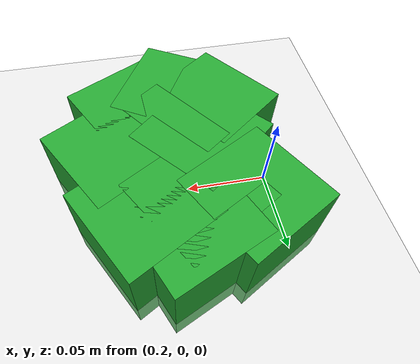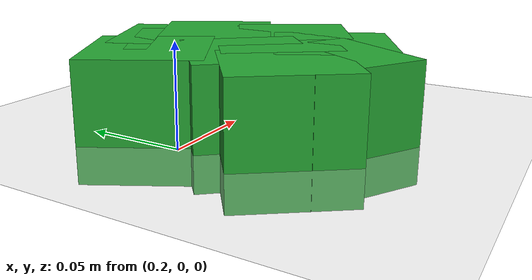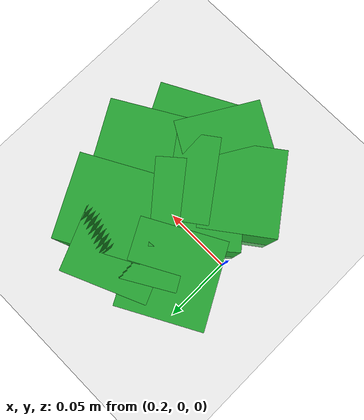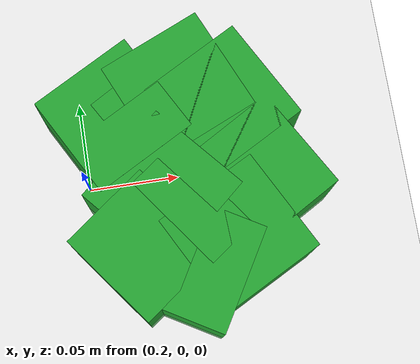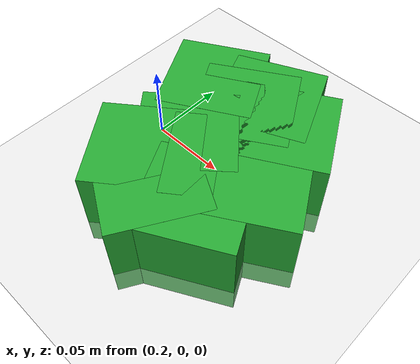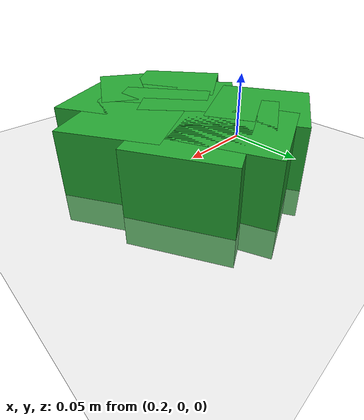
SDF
<sdf version='1.7'>
    <world name='default'>
        <scene>
            <ambient>0.0 0.0 0.0 1.0</ambient>
            <shadows>0</shadows>
            <background>0.7 0.7 0.7 1</background>
        </scene>
        <!-- A global light source -->
        <include>
            <uri>model://sun</uri>
        </include>

        <!-- A ground plane -->
        <include>
            <uri>model://ground_plane</uri>
        </include>

        <!--CUBES-->

        <model name='cube_red'>
            <include>
                <uri>model://cube_red</uri>
            </include>
            <pose frame=''>0.251 0.00503 0.011 0.000183 0.0 0.750</pose>
        </model>

        <model name='cube_green'>
            <include>
                <uri>model://cube_green</uri>
            </include>
            <pose frame=''>0.2566 0.041363 0.011 0 0 0.41164</pose>
        </model>

        <model name='cube_green1'>
            <include>
                <uri>model://cube_green</uri>
            </include>
            <pose frame=''>0.279 0.0296 0.011 0.0 0.0 0.5</pose>
        </model>

        <model name='cube_green2'>
            <include>
                <uri>model://cube_green</uri>
            </include>
            <pose frame=''>0.25 0.0272 0.011 0.0 0.0 0.5326</pose>
        </model>
        <model name='cube_green3'>
            <include>
                <uri>model://cube_green</uri>
            </include>
            <pose frame=''>0.2199 0.031 0.011 -0.00036 0.0 0.5</pose>
        </model>
        <model name='cube_green4'>
            <include>
                <uri>model://cube_green</uri>
            </include>
            <pose frame=''>0.24 -0.013 0.011 0.0 -0.000184 0.7153</pose>
        </model>
        <model name='cube_green5'>
            <include>
                <uri>model://cube_green</uri>
            </include>
            <pose frame=''>0.26666 -0.014079 0.011 0.0 0.000183 0.634</pose>
        </model>
        <model name='cube_green6'>
            <include>
                <uri>model://cube_green</uri>
            </include>
            <pose frame=''>0.291355 -0.011962 0.011 0.0 0.0 0.527</pose>
        </model>
        <model name='cube_green7'>
            <include>
                <uri>model://cube_green</uri>
            </include>
            <pose frame=''>0.2288 -0.039197 0.011 0.0 0.0 0.641550</pose>
        </model>
        <model name='cube_green8'>
            <include>
                <uri>model://cube_green</uri>
            </include>
            <pose frame=''>0.25 -0.052115 0.011 0.0 -0.000184 -0.5307</pose>
        </model>
        <model name='cube_green9'>
            <include>
                <uri>model://cube_green</uri>
            </include>
            <pose frame=''>0.2761 -0.042210 0.011 0.0 0.0 0.485</pose>
        </model>

        <physics name='default_physics' default='0' type='ode'>
            <max_step_size>0.001</max_step_size>
            <real_time_factor>1</real_time_factor>
            <real_time_update_rate>1000</real_time_update_rate>
        </physics>
        <!--GUI-->
        <gui fullscreen='0'>
            <camera name='user_camera'>
                <pose frame=''>0.198 -0.823 0.916 0 0.763 1.592</pose>
                <view_controller>orbit</view_controller>
                <projection_type>perspective</projection_type>
            </camera>
        </gui>
        <!-- SplotLight source -->
    <light name='user_spot_light_0' type='spot'>
      <pose>0.24066 -0.017779 1 0 -0 0</pose>
      <diffuse>0.5 0.5 0.5 1</diffuse>
      <specular>0.1 0.1 0.1 1</specular>
      <direction>0 0 -1</direction>
      <attenuation>
        <range>20</range>
        <constant>0.5</constant>
        <linear>0.01</linear>
        <quadratic>0.001</quadratic>
      </attenuation>
      <cast_shadows>0</cast_shadows>
      <spot>
        <inner_angle>0.6</inner_angle>
        <outer_angle>1</outer_angle>
        <falloff>1</falloff>
      </spot>
    </light>

    </world>
</sdf>

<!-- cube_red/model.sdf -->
<sdf version="1.8">
  <model name="cube_red">
    <static>false</static>
    <link name="cube_link">

      <inertial>
        <mass>0.1</mass>
        <inertia>
          <ixx>0.000042</ixx>
          <iyy>0.000042</iyy>
          <izz>0.000042</izz>
        </inertia>
      </inertial>

      <collision name="collision">
        <geometry>
          <box><size>0.05 0.05 0.05</size></box>
        </geometry>
        <surface>
          <friction>
            <ode><mu>0.8</mu><mu2>0.8</mu2></ode>
          </friction>
        </surface>
      </collision>

      <visual name="visual">
        <geometry>
          <box><size>0.05 0.05 0.05</size></box>
        </geometry>
        <material>
          <ambient>1 0 0 1</ambient>
          <diffuse>1 0 0 1</diffuse>
          <specular>0.1 0.1 0.1 1</specular>
        </material>
      </visual>

    </link>
  </model>
</sdf>

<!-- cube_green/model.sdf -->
<sdf version='1.6'>
  <model name="cube_green">
      <static>0</static>
      <link name='link'>
        <inertial>
          <mass>0.25</mass>
          <inertia>
            <ixx>0.001</ixx>
            <ixy>0.000000</ixy>
            <ixz>0.000000</ixz>
            <iyy>0.001</iyy>
            <iyz>0.000000</iyz>
            <izz>0.001</izz>
          </inertia>
        </inertial>
        <collision name='collision'>
          <geometry>
            <box>
              <size>0.060 0.060 0.060</size>
            </box>
          </geometry>
          <surface>
            <friction>
              <ode>
                <mu>30.0</mu>
                <mu2>30.0</mu2>
              </ode>
            </friction>
            <contact>
              <ode>
                <kp>1000000.0</kp>
                <kd>100.0</kd>
                <max_vel>1.0</max_vel>
                <min_depth>0.002</min_depth>
              </ode>
            </contact>
          </surface>
        </collision>
        <visual name='visual'>
          <geometry>
            <box>
              <size>0.060 0.060 0.060</size>
            </box>
          </geometry>
          <material>
            <script>
              <uri>file://media/materials/scripts/gazebo.material</uri>
              <name>Gazebo/Green</name>
            </script>
          </material>
        </visual>
        <velocity_decay>
          <linear>0.000000</linear>
          <angular>0.000000</angular>
        </velocity_decay>
        <self_collide>0</self_collide>
        <kinematic>0</kinematic>
        <gravity>1</gravity>
      </link>
  </model>
</sdf>
